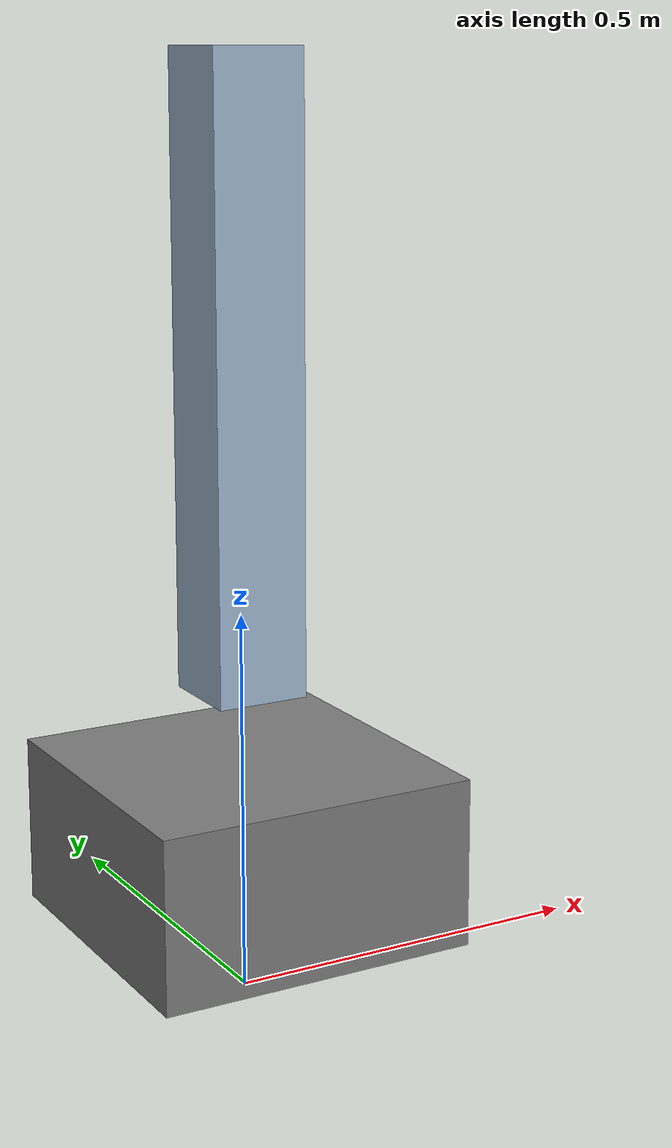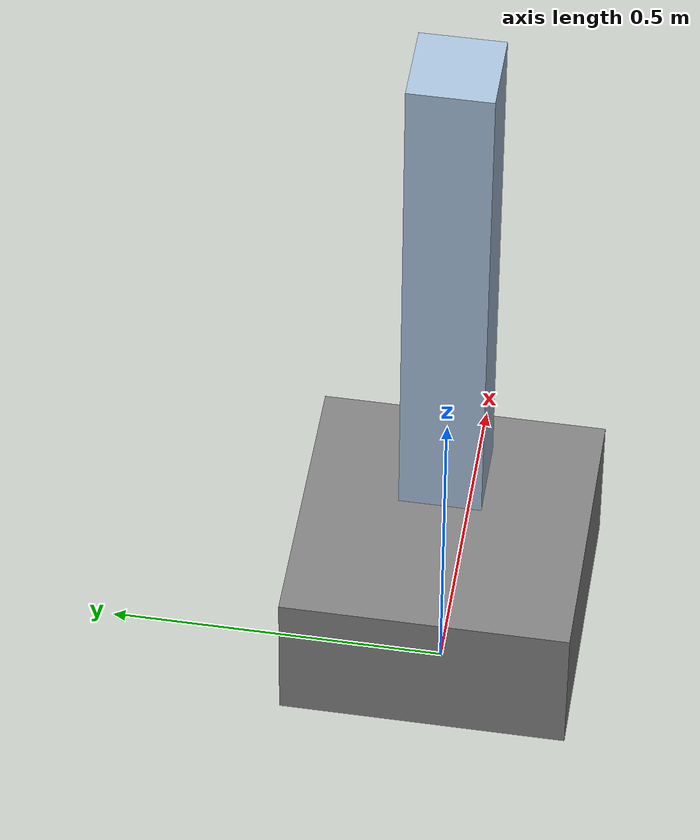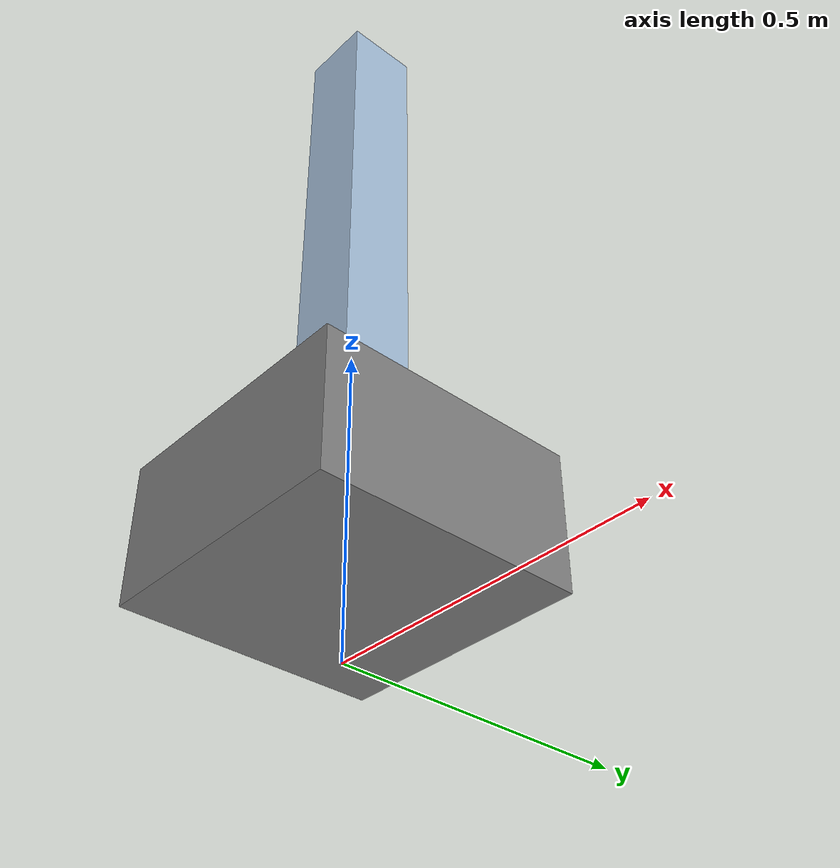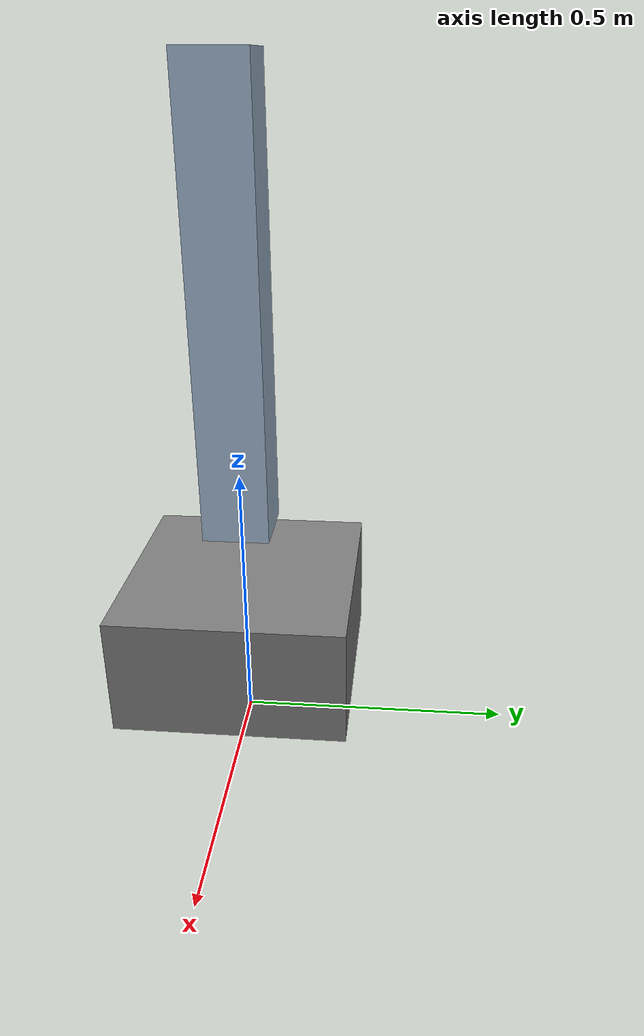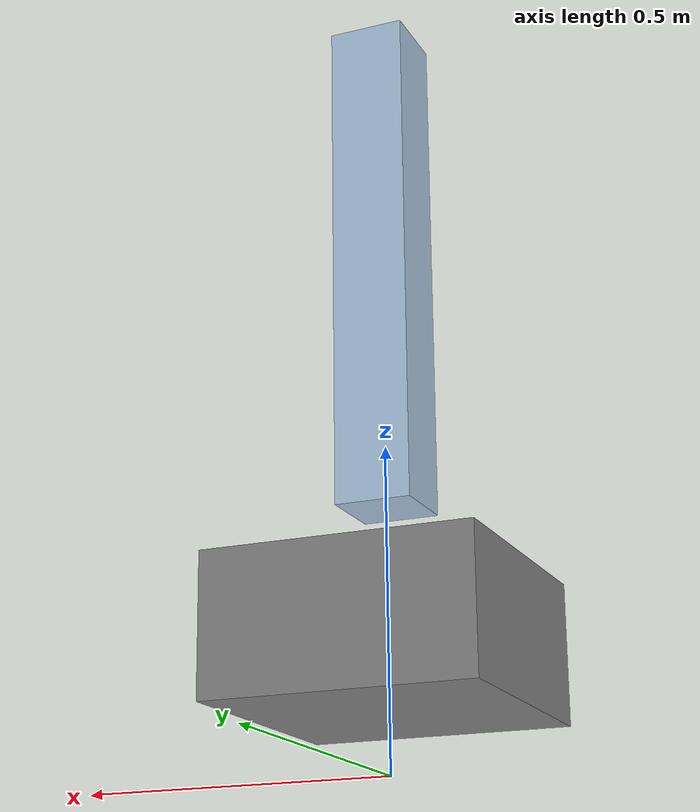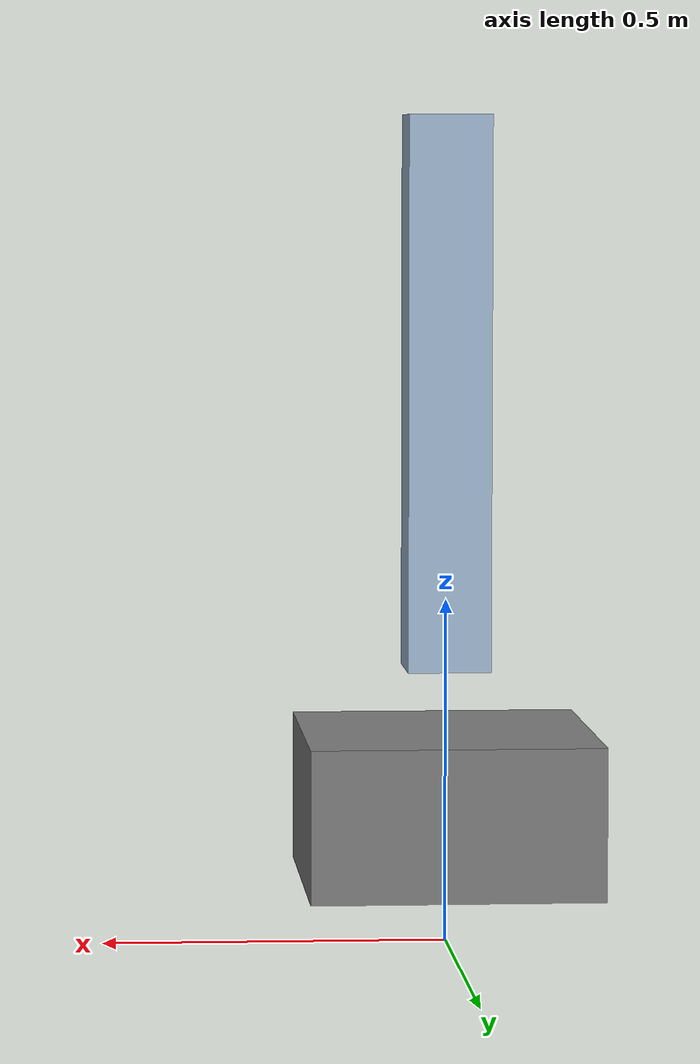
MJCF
<mujoco model="measurement_fixture">
  <worldbody>
    <body name="base" pos="0 0 0.2">
      <inertial pos="0.05 0 0.03" mass="2" diaginertia="0.01 0.01 0.01"/>
      <geom rgba="0.65 0.75 0.85 1" type="box" size="0.2 0.2 0.1"/>
      <geom name="base_collision" type="box" size="0.21 0.21 0.11"/>
      <body name="arm" pos="0 0 0.2">
        <joint name="hinge" type="hinge" axis="0 1 0" range="-90 90"/>
        <inertial pos="0 0 0.4" mass="1" diaginertia="0.01 0.01 0.01"/>
        <geom rgba="0.65 0.75 0.85 1" type="box" pos="0 0 0.4" size="0.06 0.06 0.4"/>
      </body>
    </body>
  </worldbody>
</mujoco>
